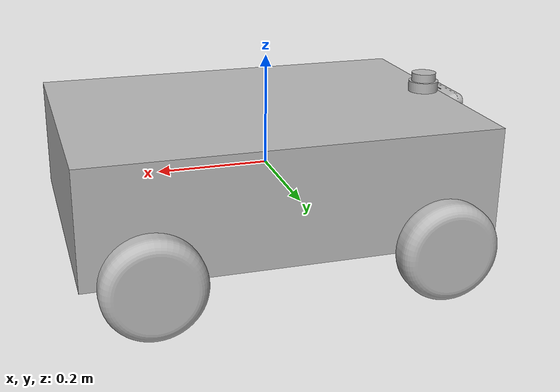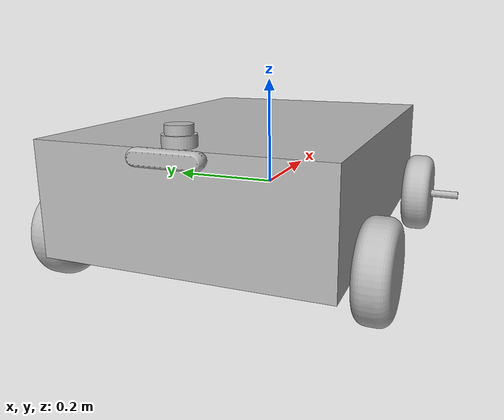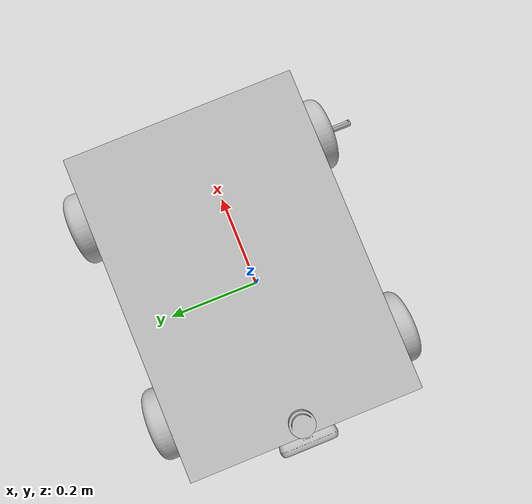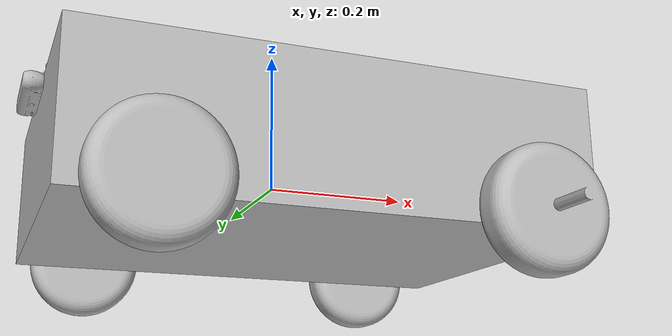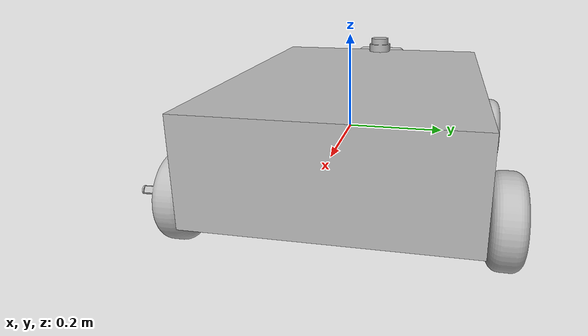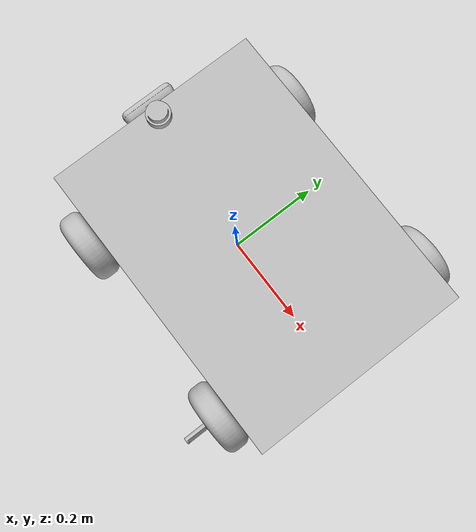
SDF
<sdf version="1.7">
  <model name="Assem1">
    <link name="base_link">
      <inertial>
        <pose>0.02626 0.020599 -0.025032 0 -0 0</pose>
        <mass>69.773</mass>
        <inertia>
          <ixx>1.68523</ixx>
          <ixy>5.97081e-17</ixy>
          <ixz>2.31085e-16</ixz>
          <iyy>4.2987</iyy>
          <iyz>-2.98112e-18</iyz>
          <izz>3.07672</izz>
        </inertia>
      </inertial>
      <collision name="base_link_collision">
        <pose>0 0 0 0 -0 0</pose>
        <geometry>
          <mesh>
            <scale>1 1 1</scale>
            <uri>package://myrobot/meshes/visual/base_link.STL</uri>
          </mesh>
        </geometry>
      </collision>
      <visual name="base_link_visual">
        <pose>0 0 0 0 -0 0</pose>
        <geometry>
          <mesh>
            <scale>1 1 1</scale>
            <uri>package://myrobot/meshes/visual/base_link.STL</uri>
          </mesh>
        </geometry>
      </visual>
    </link>
    <joint name="fixed1" type="fixed">
      <pose relative_to="base_link">-0.34964 0.025795 0.10936 0 0 -3.14159</pose>
      <parent>base_link</parent>
      <child>camera</child>
      <axis>
        <xyz>0 0 1</xyz>
        <limit>
          <lower>-1e+16</lower>
          <upper>1e+16</upper>
        </limit>
        <dynamics>
          <spring_reference>0</spring_reference>
          <spring_stiffness>0</spring_stiffness>
        </dynamics>
      </axis>
    </joint>
    <link name="camera">
      <pose relative_to="fixed1">0 0 0 0 -0 0</pose>
      <inertial>
        <pose>-0.014098 -0.000107 0.000126 0 -0 0</pose>
        <mass>0.044261</mass>
        <inertia>
          <ixx>5.78658e-05</ixx>
          <ixy>-1.98771e-08</ixy>
          <ixz>-2.707e-08</ixz>
          <iyy>3.82453e-06</iyy>
          <iyz>1.95345e-08</iyz>
          <izz>5.48822e-05</izz>
        </inertia>
      </inertial>
      <collision name="camera_collision">
        <pose>0 0 0 0 -0 0</pose>
        <geometry>
          <mesh>
            <scale>1 1 1</scale>
            <uri>package://myrobot/meshes/visual/camera.STL</uri>
          </mesh>
        </geometry>
      </collision>
      <visual name="camera_visual">
        <pose>0 0 0 0 -0 0</pose>
        <geometry>
          <mesh>
            <scale>1 1 1</scale>
            <uri>package://myrobot/meshes/visual/camera.STL</uri>
          </mesh>
        </geometry>
      </visual>
    </link>
    <joint name="fixed2" type="fixed">
      <pose relative_to="base_link">-0.29675 0.025881 0.12982 0 0 -3.14159</pose>
      <parent>base_link</parent>
      <child>lider</child>
      <axis>
        <xyz>0 0 1</xyz>
        <limit>
          <lower>-1e+16</lower>
          <upper>1e+16</upper>
        </limit>
        <dynamics>
          <spring_reference>0</spring_reference>
          <spring_stiffness>0</spring_stiffness>
        </dynamics>
      </axis>
    </joint>
    <link name="lider">
      <pose relative_to="fixed2">0 0 0 0 -0 0</pose>
      <inertial>
        <pose>0 0 0.005846 0 -0 0</pose>
        <mass>0.0663222</mass>
        <inertia>
          <ixx>1.67516e-05</ixx>
          <ixy>-4.64103e-22</ixy>
          <ixz>-7.81377e-23</ixz>
          <iyy>1.67516e-05</iyy>
          <iyz>-1.28594e-22</iyz>
          <izz>2.13805e-05</izz>
        </inertia>
      </inertial>
      <collision name="lider_collision">
        <pose>0 0 0 0 -0 0</pose>
        <geometry>
          <mesh>
            <scale>1 1 1</scale>
            <uri>package://myrobot/meshes/visual/lider.STL</uri>
          </mesh>
        </geometry>
      </collision>
      <visual name="lider_visual">
        <pose>0 0 0 0 -0 0</pose>
        <geometry>
          <mesh>
            <scale>1 1 1</scale>
            <uri>package://myrobot/meshes/visual/lider.STL</uri>
          </mesh>
        </geometry>
      </visual>
    </link>
    <joint name="shaft1" type="revolute">
      <pose relative_to="base_link">-0.21524 0.31103 -0.066182 1.5708 -0 -3.14159</pose>
      <parent>base_link</parent>
      <child>tire1</child>
      <axis>
        <xyz>0 0 -1</xyz>
        <limit>
          <lower>-1e+16</lower>
          <upper>1e+16</upper>
        </limit>
        <dynamics>
          <spring_reference>0</spring_reference>
          <spring_stiffness>0</spring_stiffness>
        </dynamics>
      </axis>
    </joint>
    <link name="tire1">
      <pose relative_to="shaft1">0 0 0 0 -0 0</pose>
      <inertial>
        <pose>-5e-06 -5e-06 -0.000494 0 -0 0</pose>
        <mass>1.2102</mass>
        <inertia>
          <ixx>0.00234032</ixx>
          <ixy>2.10978e-08</ixy>
          <ixz>-3.32634e-07</ixz>
          <iyy>0.00234033</iyy>
          <iyz>-3.53697e-07</iyz>
          <izz>0.00398999</izz>
        </inertia>
      </inertial>
      <collision name="tire1_collision">
        <pose>0 0 0 0 -0 0</pose>
        <geometry>
          <mesh>
            <scale>1 1 1</scale>
            <uri>package://myrobot/meshes/visual/tire1.STL</uri>
          </mesh>
        </geometry>
      </collision>
      <visual name="tire1_visual">
        <pose>0 0 0 0 -0 0</pose>
        <geometry>
          <mesh>
            <scale>1 1 1</scale>
            <uri>package://myrobot/meshes/visual/tire1.STL</uri>
          </mesh>
        </geometry>
      </visual>
    </link>
    <joint name="shaft2" type="revolute">
      <pose relative_to="base_link">0.26776 0.31103 -0.066182 1.5708 -0 -3.14159</pose>
      <parent>base_link</parent>
      <child>tire2</child>
      <axis>
        <xyz>0 0 -1</xyz>
        <limit>
          <lower>-1e+16</lower>
          <upper>1e+16</upper>
        </limit>
        <dynamics>
          <spring_reference>0</spring_reference>
          <spring_stiffness>0</spring_stiffness>
        </dynamics>
      </axis>
    </joint>
    <link name="tire2">
      <pose relative_to="shaft2">0 0 0 0 -0 0</pose>
      <inertial>
        <pose>6e-06 -4e-06 -0.000494 0 -0 0</pose>
        <mass>1.2102</mass>
        <inertia>
          <ixx>0.00234033</ixx>
          <ixy>-1.97676e-08</ixy>
          <ixz>3.99523e-07</ixz>
          <iyy>0.00234032</iyy>
          <iyz>-2.75914e-07</iyz>
          <izz>0.00398999</izz>
        </inertia>
      </inertial>
      <collision name="tire2_collision">
        <pose>0 0 0 0 -0 0</pose>
        <geometry>
          <mesh>
            <scale>1 1 1</scale>
            <uri>package://myrobot/meshes/visual/tire2.STL</uri>
          </mesh>
        </geometry>
      </collision>
      <visual name="tire2_visual">
        <pose>0 0 0 0 -0 0</pose>
        <geometry>
          <mesh>
            <scale>1 1 1</scale>
            <uri>package://myrobot/meshes/visual/tire2.STL</uri>
          </mesh>
        </geometry>
      </visual>
    </link>
    <joint name="shaft3" type="revolute">
      <pose relative_to="base_link">-0.21524 -0.26097 -0.066182 1.5708 -0 -3.14159</pose>
      <parent>base_link</parent>
      <child>tire3</child>
      <axis>
        <xyz>0 0 1</xyz>
        <limit>
          <lower>-1e+16</lower>
          <upper>1e+16</upper>
        </limit>
        <dynamics>
          <spring_reference>0</spring_reference>
          <spring_stiffness>0</spring_stiffness>
        </dynamics>
      </axis>
    </joint>
    <link name="tire3">
      <pose relative_to="shaft3">0 0 0 0 -0 0</pose>
      <inertial>
        <pose>6e-06 -3e-06 0.000494 0 -0 0</pose>
        <mass>1.2102</mass>
        <inertia>
          <ixx>0.00234034</ixx>
          <ixy>-1.76216e-08</ixy>
          <ixz>-4.27752e-07</ixz>
          <iyy>0.00234031</iyy>
          <iyz>2.29729e-07</iyz>
          <izz>0.00398999</izz>
        </inertia>
      </inertial>
      <collision name="tire3_collision">
        <pose>0 0 0 0 -0 0</pose>
        <geometry>
          <mesh>
            <scale>1 1 1</scale>
            <uri>package://myrobot/meshes/visual/tire3.STL</uri>
          </mesh>
        </geometry>
      </collision>
      <visual name="tire3_visual">
        <pose>0 0 0 0 -0 0</pose>
        <geometry>
          <mesh>
            <scale>1 1 1</scale>
            <uri>package://myrobot/meshes/visual/tire3.STL</uri>
          </mesh>
        </geometry>
      </visual>
    </link>
    <joint name="shaft4" type="revolute">
      <pose relative_to="base_link">0.26776 -0.26097 -0.066182 1.5708 -0 -3.14159</pose>
      <parent>base_link</parent>
      <child>tire4</child>
      <axis>
        <xyz>0 0 1</xyz>
        <limit>
          <lower>-1e+16</lower>
          <upper>1e+16</upper>
        </limit>
        <dynamics>
          <spring_reference>0</spring_reference>
          <spring_stiffness>0</spring_stiffness>
        </dynamics>
      </axis>
    </joint>
    <link name="tire4">
      <pose relative_to="shaft4">0 0 0 0 -0 0</pose>
      <inertial>
        <pose>-5e-06 -5e-06 0.000494 0 -0 0</pose>
        <mass>1.2102</mass>
        <inertia>
          <ixx>0.00234032</ixx>
          <ixy>2.0905e-08</ixy>
          <ixz>3.16917e-07</ixz>
          <iyy>0.00234033</iyy>
          <iyz>3.67846e-07</iyz>
          <izz>0.00398999</izz>
        </inertia>
      </inertial>
      <collision name="tire4_collision">
        <pose>0 0 0 0 -0 0</pose>
        <geometry>
          <mesh>
            <scale>1 1 1</scale>
            <uri>package://myrobot/meshes/visual/tire4.STL</uri>
          </mesh>
        </geometry>
      </collision>
      <visual name="tire4_visual">
        <pose>0 0 0 0 -0 0</pose>
        <geometry>
          <mesh>
            <scale>1 1 1</scale>
            <uri>package://myrobot/meshes/visual/tire4.STL</uri>
          </mesh>
        </geometry>
      </visual>
    </link>
  </model>
</sdf>
